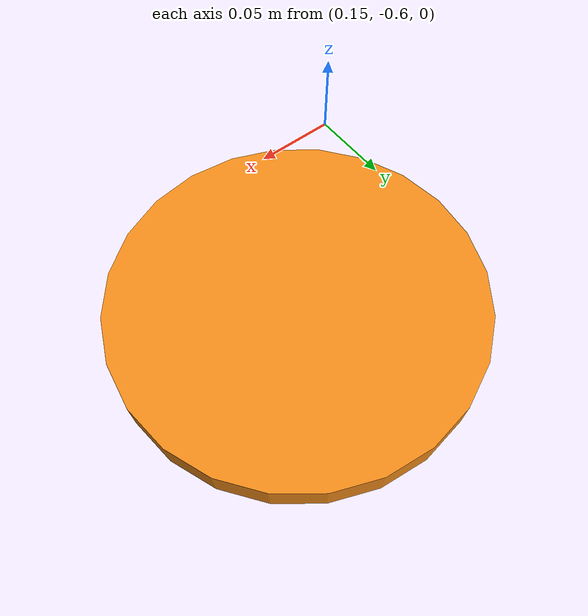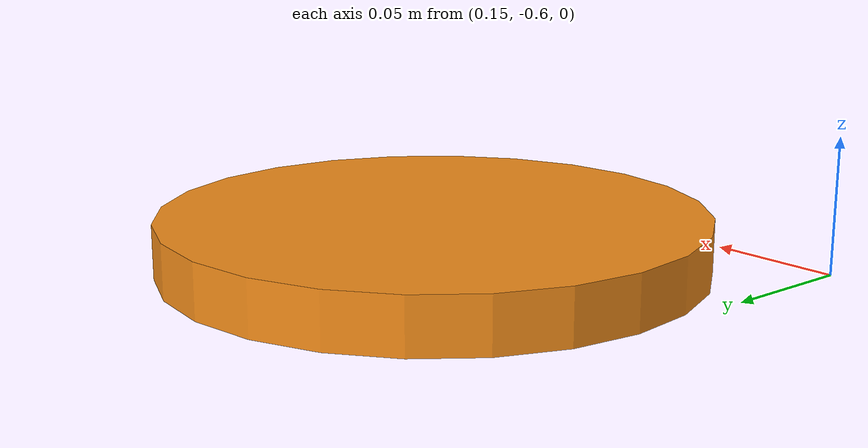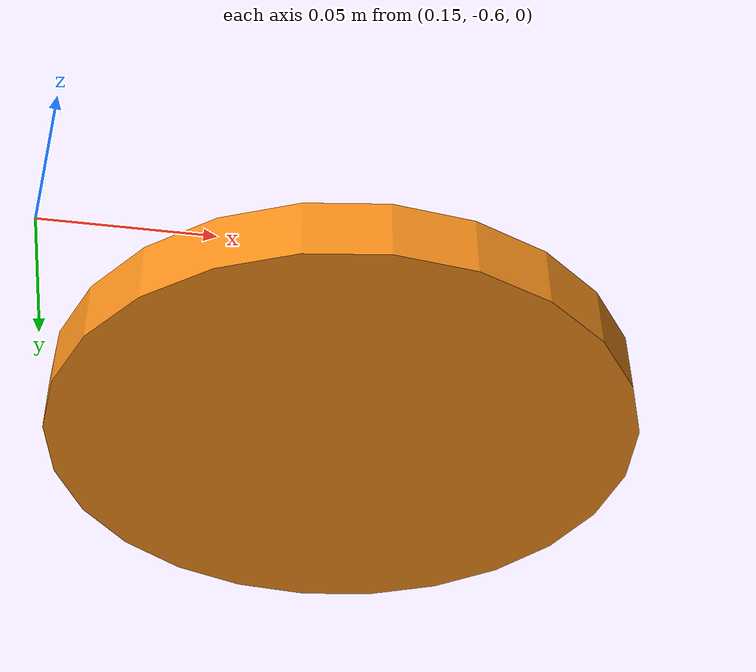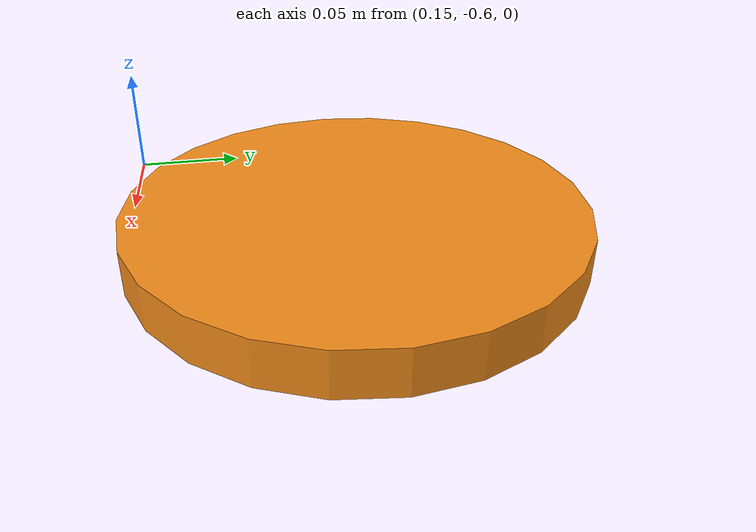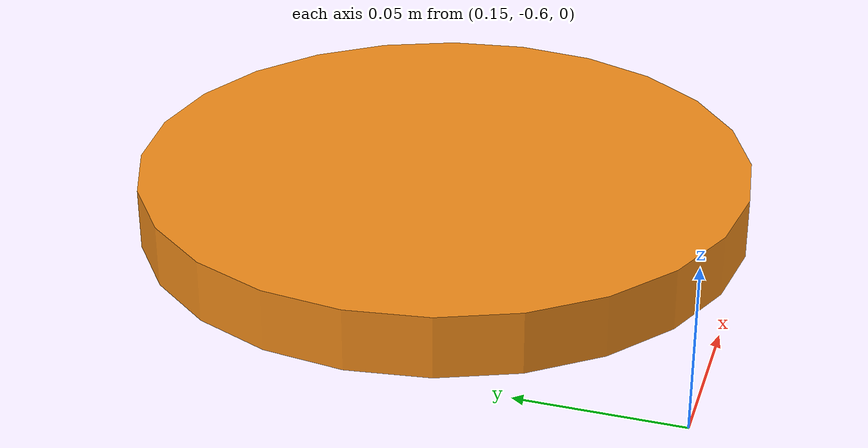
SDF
<?xml version="1.0"?>
<sdf version="1.5">
  <model name="bin3">
    <static>true</static>
    <link name="link">
      <inertial>
        <pose>0.25 -0.5 0.01 0 0 0</pose>
        <mass>0.1</mass>
      </inertial>
      <collision name="collision">
        <pose>0.25 -0.5 0.01 0 0 0</pose>
        <geometry>
          <cylinder>
            <radius>0.1</radius>
            <length>0.02</length>
          </cylinder>
        </geometry>
        <surface>
          <friction>
            <ode>
              <mu>100</mu>
              <mu2>50</mu2>
            </ode>
          </friction>
        </surface>
      </collision>
      <visual name="visual">
        <pose>0.25 -0.5 0.01 0 0 0</pose>
        <geometry>
          <cylinder>
            <radius>0.1</radius>
            <length>0.02</length>
          </cylinder>
        </geometry>
        <material>
          <script>
            <uri>file://media/materials/scripts/gazebo.material</uri>
            <name>Gazebo/Orange</name>
          </script>
        </material>
      </visual>
    </link>
  </model>
</sdf>
